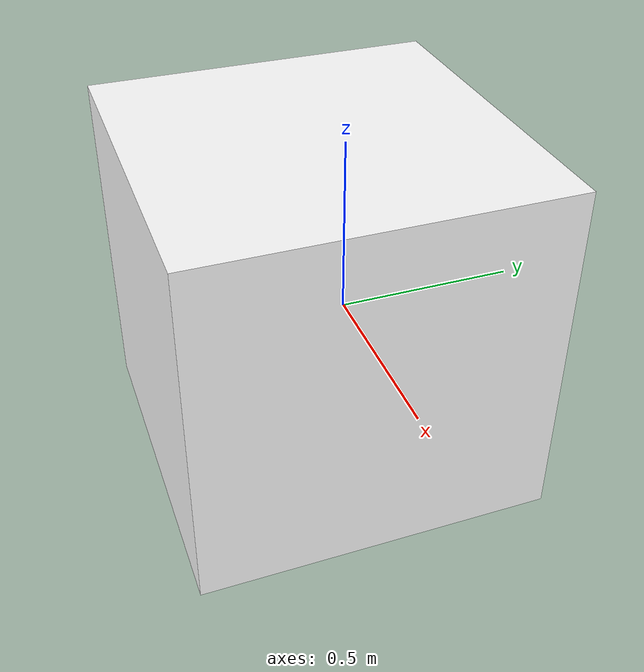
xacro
<?xml version="1.0"?>
<robot name="myrobot02" xmlns:xacro="http://ros.org/wiki/xacro">
  <xacro:property name="M_PI" value="3.14159"/>
  <xacro:property name="base_x" value="0.33" />
  <xacro:property name="base_y" value="0.33" />
<link name="base_link">
    <inertial>
      <origin
        xyz="0.000454836605433948 1.27332861349781E-18 0.000181934642173575"
        rpy="0 0 0" />
      <mass
        value="0.497309733552923" />
      <inertia
        ixx="0.000379491084127215"
        ixy="-2.59493525107028E-19"
        ixz="-3.57796209039485E-06"
        iyy="0.00138864533975945"
        iyz="-4.48378120593819E-21"
        izz="0.00169173411179082" />
    </inertial>
    <visual>
      <origin
        xyz="0 0 0"
        rpy="0 0 0" />
      <geometry>
	<box size="0.001 0.001 0.001"/>
      </geometry>
      <material
        name="">
        <color
          rgba="1 1 1 1" />
      </material>
    </visual>
    <collision>
      <origin
        xyz="0 0 0"
        rpy="0 0 0" />
      <geometry>
	<box size="0.001 0.001 0.001"/>
      </geometry>
    </collision>
  </link>
  <link
    name="wheel_1">
    <inertial>
      <origin
        xyz="2.08756043780373E-05 5.32859680283521E-06 -6.93889390390723E-18"
        rpy="0 0 0" />
      <mass
        value="0.0282994666235368" />
      <inertia
        ixx="6.59828205801096E-06"
        ixy="-3.54146284907832E-09"
        ixz="-4.2351647362715E-22"
        iyy="1.27373747424717E-05"
        iyz="7.11375326795604E-23"
        izz="6.61215628796161E-06" />
    </inertial>
    <visual>
      <origin
        xyz="0 0 0"
        rpy="0 0 0" />
      <geometry>
	<box size="0.001 0.001 0.001"/>
      </geometry>
      <material
        name="">
        <color
          rgba="1 1 1 1" />
      </material>
    </visual>
    <collision>
      <origin
        xyz="0 0 0"
        rpy="0 0 0" />
      <geometry>
	<box size="0.001 0.001 0.001"/>
      </geometry>
    </collision>
  </link>
  <joint
    name="wheel_1_to_base_link"
    type="continuous">
    <origin
      xyz="0.07 0.052 0"
      rpy="0 -0.75239 0" />
    <parent
      link="base_link" />
    <child
      link="wheel_1" />
    <axis
      xyz="0 1 0" />
  </joint>
  <link
    name="wheel_2">
    <inertial>
      <origin
        xyz="2.08756043780373E-05 5.32859680283521E-06 -1.44387083394547E-35"
        rpy="0 0 0" />
      <mass
        value="0.0282994666235368" />
      <inertia
        ixx="6.59828205801097E-06"
        ixy="-3.54146284907845E-09"
        ixz="4.94314925543529E-39"
        iyy="1.27373747424718E-05"
        iyz="-8.12167230901508E-39"
        izz="6.61215628796161E-06" />
    </inertial>
    <visual>
      <origin
        xyz="0 0 0"
        rpy="0 0 0" />
      <geometry>
	<box size="0.001 0.001 0.001"/>
      </geometry>
      <material
        name="">
        <color
          rgba="1 1 1 1" />
      </material>
    </visual>
    <collision>
      <origin
        xyz="0 0 0"
        rpy="0 0 0" />
      <geometry>
	<box size="0.001 0.001 0.001"/>
      </geometry>
    </collision>
  </link>
  <joint
    name="wheel_2_to_base_link"
    type="continuous">
    <origin
      xyz="-0.07 0.052 0"
      rpy="0 0 0" />
    <parent
      link="base_link" />
    <child
      link="wheel_2" />
    <axis
      xyz="0 1 0" />
  </joint>
  <link
    name="wheel_3">
    <inertial>
      <origin
        xyz="2.08756043780373E-05 5.32859680283521E-06 -1.44387083394547E-35"
        rpy="0 0 0" />
      <mass
        value="0.0282994666235368" />
      <inertia
        ixx="6.59828205801097E-06"
        ixy="-3.54146284907845E-09"
        ixz="4.94314925543529E-39"
        iyy="1.27373747424718E-05"
        iyz="-8.12167230901508E-39"
        izz="6.61215628796161E-06" />
    </inertial>
    <visual>
      <origin
        xyz="0 0 0"
        rpy="0 0 0" />
      <geometry>

	<box size="0.001 0.001 0.001"/>
      </geometry>
      <material
        name="">
        <color
          rgba="1 1 1 1" />
      </material>
    </visual>
    <collision>
      <origin
        xyz="0 0 0"
        rpy="0 0 0" />
      <geometry>
	<box size="0.001 0.001 0.001"/>
      </geometry>
    </collision>
  </link>
  <joint
    name="wheel_3_to_base_link"
    type="continuous">
    <origin
      xyz="0.07 -0.052 0"
      rpy="0 0 3.1416" />
    <parent
      link="base_link" />
    <child
      link="wheel_3" />
    <axis
      xyz="0 -1 0" />
  </joint>
  <link
    name="wheel_4">
    <inertial>
      <origin
        xyz="2.08756043780511E-05 5.32859680283521E-06 -1.44387083394547E-35"
        rpy="0 0 0" />
      <mass
        value="0.0282994666235368" />
      <inertia
        ixx="6.59828205801097E-06"
        ixy="-3.54146284907845E-09"
        ixz="4.94314925543529E-39"
        iyy="1.27373747424718E-05"
        iyz="-8.12167230901508E-39"
        izz="6.61215628796161E-06" />
    </inertial>
    <visual>
      <origin
        xyz="0 0 0"
        rpy="0 0 0" />
      <geometry>
	<box size="1 1 1"/>
      </geometry>
      <material
        name="">
        <color
          rgba="1 1 1 1" />
      </material>
    </visual>
    <collision>
      <origin
        xyz="0 0 0"
        rpy="0 0 0" />
      <geometry>
	<box size="1 1 1"/>
      </geometry>
    </collision>
  </link>
  <joint
    name="wheel_4_to_base_link"
    type="continuous">
    <origin
      xyz="-0.07 -0.052 0"
      rpy="0 0 3.14159265358979" />
    <parent
      link="base_link" />
    <child
      link="wheel_4" />
    <axis
      xyz="0 -1 0" />
  </joint>

</robot>
